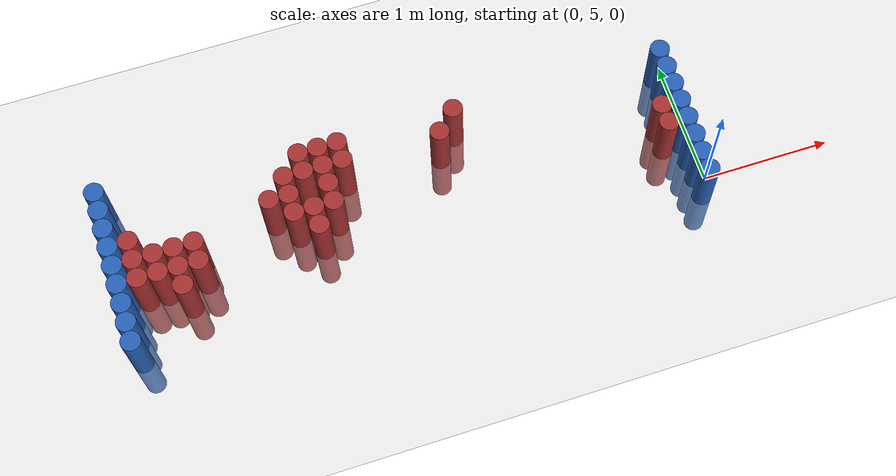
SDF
<sdf version="1.6">
 <world name="default">
  <model name="ground_plane">
   <static>1</static>
   <link name="link">
    <collision name="collision">
     <geometry><plane><normal>0 0 1</normal><size>100 100</size></plane></geometry>
     <surface><friction><ode><mu>100</mu><mu2>50</mu2></ode></friction></surface>
    </collision>
    <visual name="visual">
     <cast_shadows>0</cast_shadows>
     <geometry><plane><normal>0 0 1</normal><size>100 100</size></plane></geometry>
     <material>
      <script><uri>file://media/materials/scripts/gazebo.material</uri><name>Gazebo/Grey</name></script>
     </material>
    </visual>
   </link>
  </model>
  <model name="unit_cylinder_92">
   <static>1</static>
   <pose>-0.075000 4.875000 0.000000 0.000000 0.000000 0.000000</pose>
   <link name="link">
    <inertial>
     <mass>1</mass>
     <inertia><ixx>0.145833</ixx><ixy>0</ixy><ixz>0</ixz><iyy>0.145833</iyy><iyz>0</iyz><izz>0.125</izz></inertia>
    </inertial>
    <collision name="collision">
     <geometry><cylinder><radius>0.075000</radius><length>1</length></cylinder></geometry>
    </collision>
    <visual name="visual">
     <geometry><cylinder><radius>0.075000</radius><length>1</length></cylinder></geometry>
     <material>
      <ambient>0.152000 0.379000 0.720000 1</ambient>
      <diffuse>0.152000 0.379000 0.720000 1</diffuse>
     </material>
     <material>
      <script><name>Gazebo/Grey</name><uri>file://media/materials/scripts/gazebo.material</uri></script>
     </material>
    </visual>
   </link>
  </model>
  <model name="unit_cylinder_93">
   <static>1</static>
   <pose>-4.425000 4.875000 0.000000 0.000000 0.000000 0.000000</pose>
   <link name="link">
    <inertial>
     <mass>1</mass>
     <inertia><ixx>0.145833</ixx><ixy>0</ixy><ixz>0</ixz><iyy>0.145833</iyy><iyz>0</iyz><izz>0.125</izz></inertia>
    </inertial>
    <collision name="collision">
     <geometry><cylinder><radius>0.075000</radius><length>1</length></cylinder></geometry>
    </collision>
    <visual name="visual">
     <geometry><cylinder><radius>0.075000</radius><length>1</length></cylinder></geometry>
     <material>
      <ambient>0.152000 0.379000 0.720000 1</ambient>
      <diffuse>0.152000 0.379000 0.720000 1</diffuse>
     </material>
     <material>
      <script><name>Gazebo/Grey</name><uri>file://media/materials/scripts/gazebo.material</uri></script>
     </material>
    </visual>
   </link>
  </model>
  <model name="unit_cylinder_94">
   <static>1</static>
   <pose>-0.075000 5.025000 0.000000 0.000000 0.000000 0.000000</pose>
   <link name="link">
    <inertial>
     <mass>1</mass>
     <inertia><ixx>0.145833</ixx><ixy>0</ixy><ixz>0</ixz><iyy>0.145833</iyy><iyz>0</iyz><izz>0.125</izz></inertia>
    </inertial>
    <collision name="collision">
     <geometry><cylinder><radius>0.075000</radius><length>1</length></cylinder></geometry>
    </collision>
    <visual name="visual">
     <geometry><cylinder><radius>0.075000</radius><length>1</length></cylinder></geometry>
     <material>
      <ambient>0.152000 0.379000 0.720000 1</ambient>
      <diffuse>0.152000 0.379000 0.720000 1</diffuse>
     </material>
     <material>
      <script><name>Gazebo/Grey</name><uri>file://media/materials/scripts/gazebo.material</uri></script>
     </material>
    </visual>
   </link>
  </model>
  <model name="unit_cylinder_95">
   <static>1</static>
   <pose>-4.425000 5.025000 0.000000 0.000000 0.000000 0.000000</pose>
   <link name="link">
    <inertial>
     <mass>1</mass>
     <inertia><ixx>0.145833</ixx><ixy>0</ixy><ixz>0</ixz><iyy>0.145833</iyy><iyz>0</iyz><izz>0.125</izz></inertia>
    </inertial>
    <collision name="collision">
     <geometry><cylinder><radius>0.075000</radius><length>1</length></cylinder></geometry>
    </collision>
    <visual name="visual">
     <geometry><cylinder><radius>0.075000</radius><length>1</length></cylinder></geometry>
     <material>
      <ambient>0.152000 0.379000 0.720000 1</ambient>
      <diffuse>0.152000 0.379000 0.720000 1</diffuse>
     </material>
     <material>
      <script><name>Gazebo/Grey</name><uri>file://media/materials/scripts/gazebo.material</uri></script>
     </material>
    </visual>
   </link>
  </model>
  <model name="unit_cylinder_96">
   <static>1</static>
   <pose>-4.425000 5.175000 0.000000 0.000000 0.000000 0.000000</pose>
   <link name="link">
    <inertial>
     <mass>1</mass>
     <inertia><ixx>0.145833</ixx><ixy>0</ixy><ixz>0</ixz><iyy>0.145833</iyy><iyz>0</iyz><izz>0.125</izz></inertia>
    </inertial>
    <collision name="collision">
     <geometry><cylinder><radius>0.075000</radius><length>1</length></cylinder></geometry>
    </collision>
    <visual name="visual">
     <geometry><cylinder><radius>0.075000</radius><length>1</length></cylinder></geometry>
     <material>
      <ambient>0.152000 0.379000 0.720000 1</ambient>
      <diffuse>0.152000 0.379000 0.720000 1</diffuse>
     </material>
     <material>
      <script><name>Gazebo/Grey</name><uri>file://media/materials/scripts/gazebo.material</uri></script>
     </material>
    </visual>
   </link>
  </model>
  <model name="unit_cylinder_97">
   <static>1</static>
   <pose>-4.425000 5.325000 0.000000 0.000000 0.000000 0.000000</pose>
   <link name="link">
    <inertial>
     <mass>1</mass>
     <inertia><ixx>0.145833</ixx><ixy>0</ixy><ixz>0</ixz><iyy>0.145833</iyy><iyz>0</iyz><izz>0.125</izz></inertia>
    </inertial>
    <collision name="collision">
     <geometry><cylinder><radius>0.075000</radius><length>1</length></cylinder></geometry>
    </collision>
    <visual name="visual">
     <geometry><cylinder><radius>0.075000</radius><length>1</length></cylinder></geometry>
     <material>
      <ambient>0.152000 0.379000 0.720000 1</ambient>
      <diffuse>0.152000 0.379000 0.720000 1</diffuse>
     </material>
     <material>
      <script><name>Gazebo/Grey</name><uri>file://media/materials/scripts/gazebo.material</uri></script>
     </material>
    </visual>
   </link>
  </model>
  <model name="unit_cylinder_98">
   <static>1</static>
   <pose>-4.425000 5.475000 0.000000 0.000000 0.000000 0.000000</pose>
   <link name="link">
    <inertial>
     <mass>1</mass>
     <inertia><ixx>0.145833</ixx><ixy>0</ixy><ixz>0</ixz><iyy>0.145833</iyy><iyz>0</iyz><izz>0.125</izz></inertia>
    </inertial>
    <collision name="collision">
     <geometry><cylinder><radius>0.075000</radius><length>1</length></cylinder></geometry>
    </collision>
    <visual name="visual">
     <geometry><cylinder><radius>0.075000</radius><length>1</length></cylinder></geometry>
     <material>
      <ambient>0.152000 0.379000 0.720000 1</ambient>
      <diffuse>0.152000 0.379000 0.720000 1</diffuse>
     </material>
     <material>
      <script><name>Gazebo/Grey</name><uri>file://media/materials/scripts/gazebo.material</uri></script>
     </material>
    </visual>
   </link>
  </model>
  <model name="unit_cylinder_99">
   <static>1</static>
   <pose>-4.425000 5.625000 0.000000 0.000000 0.000000 0.000000</pose>
   <link name="link">
    <inertial>
     <mass>1</mass>
     <inertia><ixx>0.145833</ixx><ixy>0</ixy><ixz>0</ixz><iyy>0.145833</iyy><iyz>0</iyz><izz>0.125</izz></inertia>
    </inertial>
    <collision name="collision">
     <geometry><cylinder><radius>0.075000</radius><length>1</length></cylinder></geometry>
    </collision>
    <visual name="visual">
     <geometry><cylinder><radius>0.075000</radius><length>1</length></cylinder></geometry>
     <material>
      <ambient>0.152000 0.379000 0.720000 1</ambient>
      <diffuse>0.152000 0.379000 0.720000 1</diffuse>
     </material>
     <material>
      <script><name>Gazebo/Grey</name><uri>file://media/materials/scripts/gazebo.material</uri></script>
     </material>
    </visual>
   </link>
  </model>
  <model name="unit_cylinder_100">
   <static>1</static>
   <pose>-4.425000 5.775000 0.000000 0.000000 0.000000 0.000000</pose>
   <link name="link">
    <inertial>
     <mass>1</mass>
     <inertia><ixx>0.145833</ixx><ixy>0</ixy><ixz>0</ixz><iyy>0.145833</iyy><iyz>0</iyz><izz>0.125</izz></inertia>
    </inertial>
    <collision name="collision">
     <geometry><cylinder><radius>0.075000</radius><length>1</length></cylinder></geometry>
    </collision>
    <visual name="visual">
     <geometry><cylinder><radius>0.075000</radius><length>1</length></cylinder></geometry>
     <material>
      <ambient>0.152000 0.379000 0.720000 1</ambient>
      <diffuse>0.152000 0.379000 0.720000 1</diffuse>
     </material>
     <material>
      <script><name>Gazebo/Grey</name><uri>file://media/materials/scripts/gazebo.material</uri></script>
     </material>
    </visual>
   </link>
  </model>
  <model name="unit_cylinder_101">
   <static>1</static>
   <pose>-4.425000 5.925000 0.000000 0.000000 0.000000 0.000000</pose>
   <link name="link">
    <inertial>
     <mass>1</mass>
     <inertia><ixx>0.145833</ixx><ixy>0</ixy><ixz>0</ixz><iyy>0.145833</iyy><iyz>0</iyz><izz>0.125</izz></inertia>
    </inertial>
    <collision name="collision">
     <geometry><cylinder><radius>0.075000</radius><length>1</length></cylinder></geometry>
    </collision>
    <visual name="visual">
     <geometry><cylinder><radius>0.075000</radius><length>1</length></cylinder></geometry>
     <material>
      <ambient>0.152000 0.379000 0.720000 1</ambient>
      <diffuse>0.152000 0.379000 0.720000 1</diffuse>
     </material>
     <material>
      <script><name>Gazebo/Grey</name><uri>file://media/materials/scripts/gazebo.material</uri></script>
     </material>
    </visual>
   </link>
  </model>
  <model name="unit_cylinder_102">
   <static>1</static>
   <pose>-4.425000 6.075000 0.000000 0.000000 0.000000 0.000000</pose>
   <link name="link">
    <inertial>
     <mass>1</mass>
     <inertia><ixx>0.145833</ixx><ixy>0</ixy><ixz>0</ixz><iyy>0.145833</iyy><iyz>0</iyz><izz>0.125</izz></inertia>
    </inertial>
    <collision name="collision">
     <geometry><cylinder><radius>0.075000</radius><length>1</length></cylinder></geometry>
    </collision>
    <visual name="visual">
     <geometry><cylinder><radius>0.075000</radius><length>1</length></cylinder></geometry>
     <material>
      <ambient>0.152000 0.379000 0.720000 1</ambient>
      <diffuse>0.152000 0.379000 0.720000 1</diffuse>
     </material>
     <material>
      <script><name>Gazebo/Grey</name><uri>file://media/materials/scripts/gazebo.material</uri></script>
     </material>
    </visual>
   </link>
  </model>
  <model name="unit_cylinder_126">
   <static>1</static>
   <pose>-4.275000 5.325000 0.000000 0.000000 0.000000 0.000000</pose>
   <link name="link">
    <inertial>
     <mass>1</mass>
     <inertia><ixx>0.145833</ixx><ixy>0</ixy><ixz>0</ixz><iyy>0.145833</iyy><iyz>0</iyz><izz>0.125</izz></inertia>
    </inertial>
    <collision name="collision">
     <geometry><cylinder><radius>0.075000</radius><length>1</length></cylinder></geometry>
    </collision>
    <visual name="visual">
     <geometry><cylinder><radius>0.075000</radius><length>1</length></cylinder></geometry>
     <material>
      <ambient>0.648000 0.192000 0.192000 1</ambient>
      <diffuse>0.648000 0.192000 0.192000 1</diffuse>
     </material>
     <material>
      <script><name>Gazebo/Grey</name><uri>file://media/materials/scripts/gazebo.material</uri></script>
     </material>
    </visual>
   </link>
  </model>
  <model name="unit_cylinder_127">
   <static>1</static>
   <pose>-4.275000 5.475000 0.000000 0.000000 0.000000 0.000000</pose>
   <link name="link">
    <inertial>
     <mass>1</mass>
     <inertia><ixx>0.145833</ixx><ixy>0</ixy><ixz>0</ixz><iyy>0.145833</iyy><iyz>0</iyz><izz>0.125</izz></inertia>
    </inertial>
    <collision name="collision">
     <geometry><cylinder><radius>0.075000</radius><length>1</length></cylinder></geometry>
    </collision>
    <visual name="visual">
     <geometry><cylinder><radius>0.075000</radius><length>1</length></cylinder></geometry>
     <material>
      <ambient>0.648000 0.192000 0.192000 1</ambient>
      <diffuse>0.648000 0.192000 0.192000 1</diffuse>
     </material>
     <material>
      <script><name>Gazebo/Grey</name><uri>file://media/materials/scripts/gazebo.material</uri></script>
     </material>
    </visual>
   </link>
  </model>
  <model name="unit_cylinder_128">
   <static>1</static>
   <pose>-4.275000 5.625000 0.000000 0.000000 0.000000 0.000000</pose>
   <link name="link">
    <inertial>
     <mass>1</mass>
     <inertia><ixx>0.145833</ixx><ixy>0</ixy><ixz>0</ixz><iyy>0.145833</iyy><iyz>0</iyz><izz>0.125</izz></inertia>
    </inertial>
    <collision name="collision">
     <geometry><cylinder><radius>0.075000</radius><length>1</length></cylinder></geometry>
    </collision>
    <visual name="visual">
     <geometry><cylinder><radius>0.075000</radius><length>1</length></cylinder></geometry>
     <material>
      <ambient>0.648000 0.192000 0.192000 1</ambient>
      <diffuse>0.648000 0.192000 0.192000 1</diffuse>
     </material>
     <material>
      <script><name>Gazebo/Grey</name><uri>file://media/materials/scripts/gazebo.material</uri></script>
     </material>
    </visual>
   </link>
  </model>
  <model name="unit_cylinder_146">
   <static>1</static>
   <pose>-4.125000 5.325000 0.000000 0.000000 0.000000 0.000000</pose>
   <link name="link">
    <inertial>
     <mass>1</mass>
     <inertia><ixx>0.145833</ixx><ixy>0</ixy><ixz>0</ixz><iyy>0.145833</iyy><iyz>0</iyz><izz>0.125</izz></inertia>
    </inertial>
    <collision name="collision">
     <geometry><cylinder><radius>0.075000</radius><length>1</length></cylinder></geometry>
    </collision>
    <visual name="visual">
     <geometry><cylinder><radius>0.075000</radius><length>1</length></cylinder></geometry>
     <material>
      <ambient>0.648000 0.192000 0.192000 1</ambient>
      <diffuse>0.648000 0.192000 0.192000 1</diffuse>
     </material>
     <material>
      <script><name>Gazebo/Grey</name><uri>file://media/materials/scripts/gazebo.material</uri></script>
     </material>
    </visual>
   </link>
  </model>
  <model name="unit_cylinder_147">
   <static>1</static>
   <pose>-4.125000 5.475000 0.000000 0.000000 0.000000 0.000000</pose>
   <link name="link">
    <inertial>
     <mass>1</mass>
     <inertia><ixx>0.145833</ixx><ixy>0</ixy><ixz>0</ixz><iyy>0.145833</iyy><iyz>0</iyz><izz>0.125</izz></inertia>
    </inertial>
    <collision name="collision">
     <geometry><cylinder><radius>0.075000</radius><length>1</length></cylinder></geometry>
    </collision>
    <visual name="visual">
     <geometry><cylinder><radius>0.075000</radius><length>1</length></cylinder></geometry>
     <material>
      <ambient>0.648000 0.192000 0.192000 1</ambient>
      <diffuse>0.648000 0.192000 0.192000 1</diffuse>
     </material>
     <material>
      <script><name>Gazebo/Grey</name><uri>file://media/materials/scripts/gazebo.material</uri></script>
     </material>
    </visual>
   </link>
  </model>
  <model name="unit_cylinder_154">
   <static>1</static>
   <pose>-3.975000 5.175000 0.000000 0.000000 0.000000 0.000000</pose>
   <link name="link">
    <inertial>
     <mass>1</mass>
     <inertia><ixx>0.145833</ixx><ixy>0</ixy><ixz>0</ixz><iyy>0.145833</iyy><iyz>0</iyz><izz>0.125</izz></inertia>
    </inertial>
    <collision name="collision">
     <geometry><cylinder><radius>0.075000</radius><length>1</length></cylinder></geometry>
    </collision>
    <visual name="visual">
     <geometry><cylinder><radius>0.075000</radius><length>1</length></cylinder></geometry>
     <material>
      <ambient>0.648000 0.192000 0.192000 1</ambient>
      <diffuse>0.648000 0.192000 0.192000 1</diffuse>
     </material>
     <material>
      <script><name>Gazebo/Grey</name><uri>file://media/materials/scripts/gazebo.material</uri></script>
     </material>
    </visual>
   </link>
  </model>
  <model name="unit_cylinder_155">
   <static>1</static>
   <pose>-3.975000 5.325000 0.000000 0.000000 0.000000 0.000000</pose>
   <link name="link">
    <inertial>
     <mass>1</mass>
     <inertia><ixx>0.145833</ixx><ixy>0</ixy><ixz>0</ixz><iyy>0.145833</iyy><iyz>0</iyz><izz>0.125</izz></inertia>
    </inertial>
    <collision name="collision">
     <geometry><cylinder><radius>0.075000</radius><length>1</length></cylinder></geometry>
    </collision>
    <visual name="visual">
     <geometry><cylinder><radius>0.075000</radius><length>1</length></cylinder></geometry>
     <material>
      <ambient>0.648000 0.192000 0.192000 1</ambient>
      <diffuse>0.648000 0.192000 0.192000 1</diffuse>
     </material>
     <material>
      <script><name>Gazebo/Grey</name><uri>file://media/materials/scripts/gazebo.material</uri></script>
     </material>
    </visual>
   </link>
  </model>
  <model name="unit_cylinder_156">
   <static>1</static>
   <pose>-3.975000 5.475000 0.000000 0.000000 0.000000 0.000000</pose>
   <link name="link">
    <inertial>
     <mass>1</mass>
     <inertia><ixx>0.145833</ixx><ixy>0</ixy><ixz>0</ixz><iyy>0.145833</iyy><iyz>0</iyz><izz>0.125</izz></inertia>
    </inertial>
    <collision name="collision">
     <geometry><cylinder><radius>0.075000</radius><length>1</length></cylinder></geometry>
    </collision>
    <visual name="visual">
     <geometry><cylinder><radius>0.075000</radius><length>1</length></cylinder></geometry>
     <material>
      <ambient>0.648000 0.192000 0.192000 1</ambient>
      <diffuse>0.648000 0.192000 0.192000 1</diffuse>
     </material>
     <material>
      <script><name>Gazebo/Grey</name><uri>file://media/materials/scripts/gazebo.material</uri></script>
     </material>
    </visual>
   </link>
  </model>
  <model name="unit_cylinder_161">
   <static>1</static>
   <pose>-3.825000 5.325000 0.000000 0.000000 0.000000 0.000000</pose>
   <link name="link">
    <inertial>
     <mass>1</mass>
     <inertia><ixx>0.145833</ixx><ixy>0</ixy><ixz>0</ixz><iyy>0.145833</iyy><iyz>0</iyz><izz>0.125</izz></inertia>
    </inertial>
    <collision name="collision">
     <geometry><cylinder><radius>0.075000</radius><length>1</length></cylinder></geometry>
    </collision>
    <visual name="visual">
     <geometry><cylinder><radius>0.075000</radius><length>1</length></cylinder></geometry>
     <material>
      <ambient>0.648000 0.192000 0.192000 1</ambient>
      <diffuse>0.648000 0.192000 0.192000 1</diffuse>
     </material>
     <material>
      <script><name>Gazebo/Grey</name><uri>file://media/materials/scripts/gazebo.material</uri></script>
     </material>
    </visual>
   </link>
  </model>
  <model name="unit_cylinder_162">
   <static>1</static>
   <pose>-3.825000 5.475000 0.000000 0.000000 0.000000 0.000000</pose>
   <link name="link">
    <inertial>
     <mass>1</mass>
     <inertia><ixx>0.145833</ixx><ixy>0</ixy><ixz>0</ixz><iyy>0.145833</iyy><iyz>0</iyz><izz>0.125</izz></inertia>
    </inertial>
    <collision name="collision">
     <geometry><cylinder><radius>0.075000</radius><length>1</length></cylinder></geometry>
    </collision>
    <visual name="visual">
     <geometry><cylinder><radius>0.075000</radius><length>1</length></cylinder></geometry>
     <material>
      <ambient>0.648000 0.192000 0.192000 1</ambient>
      <diffuse>0.648000 0.192000 0.192000 1</diffuse>
     </material>
     <material>
      <script><name>Gazebo/Grey</name><uri>file://media/materials/scripts/gazebo.material</uri></script>
     </material>
    </visual>
   </link>
  </model>
  <model name="unit_cylinder_174">
   <static>1</static>
   <pose>-3.225000 5.625000 0.000000 0.000000 0.000000 0.000000</pose>
   <link name="link">
    <inertial>
     <mass>1</mass>
     <inertia><ixx>0.145833</ixx><ixy>0</ixy><ixz>0</ixz><iyy>0.145833</iyy><iyz>0</iyz><izz>0.125</izz></inertia>
    </inertial>
    <collision name="collision">
     <geometry><cylinder><radius>0.075000</radius><length>1</length></cylinder></geometry>
    </collision>
    <visual name="visual">
     <geometry><cylinder><radius>0.075000</radius><length>1</length></cylinder></geometry>
     <material>
      <ambient>0.648000 0.192000 0.192000 1</ambient>
      <diffuse>0.648000 0.192000 0.192000 1</diffuse>
     </material>
     <material>
      <script><name>Gazebo/Grey</name><uri>file://media/materials/scripts/gazebo.material</uri></script>
     </material>
    </visual>
   </link>
  </model>
  <model name="unit_cylinder_182">
   <static>1</static>
   <pose>-3.075000 5.475000 0.000000 0.000000 0.000000 0.000000</pose>
   <link name="link">
    <inertial>
     <mass>1</mass>
     <inertia><ixx>0.145833</ixx><ixy>0</ixy><ixz>0</ixz><iyy>0.145833</iyy><iyz>0</iyz><izz>0.125</izz></inertia>
    </inertial>
    <collision name="collision">
     <geometry><cylinder><radius>0.075000</radius><length>1</length></cylinder></geometry>
    </collision>
    <visual name="visual">
     <geometry><cylinder><radius>0.075000</radius><length>1</length></cylinder></geometry>
     <material>
      <ambient>0.648000 0.192000 0.192000 1</ambient>
      <diffuse>0.648000 0.192000 0.192000 1</diffuse>
     </material>
     <material>
      <script><name>Gazebo/Grey</name><uri>file://media/materials/scripts/gazebo.material</uri></script>
     </material>
    </visual>
   </link>
  </model>
  <model name="unit_cylinder_183">
   <static>1</static>
   <pose>-3.075000 5.625000 0.000000 0.000000 0.000000 0.000000</pose>
   <link name="link">
    <inertial>
     <mass>1</mass>
     <inertia><ixx>0.145833</ixx><ixy>0</ixy><ixz>0</ixz><iyy>0.145833</iyy><iyz>0</iyz><izz>0.125</izz></inertia>
    </inertial>
    <collision name="collision">
     <geometry><cylinder><radius>0.075000</radius><length>1</length></cylinder></geometry>
    </collision>
    <visual name="visual">
     <geometry><cylinder><radius>0.075000</radius><length>1</length></cylinder></geometry>
     <material>
      <ambient>0.648000 0.192000 0.192000 1</ambient>
      <diffuse>0.648000 0.192000 0.192000 1</diffuse>
     </material>
     <material>
      <script><name>Gazebo/Grey</name><uri>file://media/materials/scripts/gazebo.material</uri></script>
     </material>
    </visual>
   </link>
  </model>
  <model name="unit_cylinder_184">
   <static>1</static>
   <pose>-3.075000 5.775000 0.000000 0.000000 0.000000 0.000000</pose>
   <link name="link">
    <inertial>
     <mass>1</mass>
     <inertia><ixx>0.145833</ixx><ixy>0</ixy><ixz>0</ixz><iyy>0.145833</iyy><iyz>0</iyz><izz>0.125</izz></inertia>
    </inertial>
    <collision name="collision">
     <geometry><cylinder><radius>0.075000</radius><length>1</length></cylinder></geometry>
    </collision>
    <visual name="visual">
     <geometry><cylinder><radius>0.075000</radius><length>1</length></cylinder></geometry>
     <material>
      <ambient>0.648000 0.192000 0.192000 1</ambient>
      <diffuse>0.648000 0.192000 0.192000 1</diffuse>
     </material>
     <material>
      <script><name>Gazebo/Grey</name><uri>file://media/materials/scripts/gazebo.material</uri></script>
     </material>
    </visual>
   </link>
  </model>
  <model name="unit_cylinder_191">
   <static>1</static>
   <pose>-2.925000 5.325000 0.000000 0.000000 0.000000 0.000000</pose>
   <link name="link">
    <inertial>
     <mass>1</mass>
     <inertia><ixx>0.145833</ixx><ixy>0</ixy><ixz>0</ixz><iyy>0.145833</iyy><iyz>0</iyz><izz>0.125</izz></inertia>
    </inertial>
    <collision name="collision">
     <geometry><cylinder><radius>0.075000</radius><length>1</length></cylinder></geometry>
    </collision>
    <visual name="visual">
     <geometry><cylinder><radius>0.075000</radius><length>1</length></cylinder></geometry>
     <material>
      <ambient>0.648000 0.192000 0.192000 1</ambient>
      <diffuse>0.648000 0.192000 0.192000 1</diffuse>
     </material>
     <material>
      <script><name>Gazebo/Grey</name><uri>file://media/materials/scripts/gazebo.material</uri></script>
     </material>
    </visual>
   </link>
  </model>
  <model name="unit_cylinder_192">
   <static>1</static>
   <pose>-2.925000 5.475000 0.000000 0.000000 0.000000 0.000000</pose>
   <link name="link">
    <inertial>
     <mass>1</mass>
     <inertia><ixx>0.145833</ixx><ixy>0</ixy><ixz>0</ixz><iyy>0.145833</iyy><iyz>0</iyz><izz>0.125</izz></inertia>
    </inertial>
    <collision name="collision">
     <geometry><cylinder><radius>0.075000</radius><length>1</length></cylinder></geometry>
    </collision>
    <visual name="visual">
     <geometry><cylinder><radius>0.075000</radius><length>1</length></cylinder></geometry>
     <material>
      <ambient>0.648000 0.192000 0.192000 1</ambient>
      <diffuse>0.648000 0.192000 0.192000 1</diffuse>
     </material>
     <material>
      <script><name>Gazebo/Grey</name><uri>file://media/materials/scripts/gazebo.material</uri></script>
     </material>
    </visual>
   </link>
  </model>
  <model name="unit_cylinder_193">
   <static>1</static>
   <pose>-2.925000 5.775000 0.000000 0.000000 0.000000 0.000000</pose>
   <link name="link">
    <inertial>
     <mass>1</mass>
     <inertia><ixx>0.145833</ixx><ixy>0</ixy><ixz>0</ixz><iyy>0.145833</iyy><iyz>0</iyz><izz>0.125</izz></inertia>
    </inertial>
    <collision name="collision">
     <geometry><cylinder><radius>0.075000</radius><length>1</length></cylinder></geometry>
    </collision>
    <visual name="visual">
     <geometry><cylinder><radius>0.075000</radius><length>1</length></cylinder></geometry>
     <material>
      <ambient>0.648000 0.192000 0.192000 1</ambient>
      <diffuse>0.648000 0.192000 0.192000 1</diffuse>
     </material>
     <material>
      <script><name>Gazebo/Grey</name><uri>file://media/materials/scripts/gazebo.material</uri></script>
     </material>
    </visual>
   </link>
  </model>
  <model name="unit_cylinder_194">
   <static>1</static>
   <pose>-2.925000 5.925000 0.000000 0.000000 0.000000 0.000000</pose>
   <link name="link">
    <inertial>
     <mass>1</mass>
     <inertia><ixx>0.145833</ixx><ixy>0</ixy><ixz>0</ixz><iyy>0.145833</iyy><iyz>0</iyz><izz>0.125</izz></inertia>
    </inertial>
    <collision name="collision">
     <geometry><cylinder><radius>0.075000</radius><length>1</length></cylinder></geometry>
    </collision>
    <visual name="visual">
     <geometry><cylinder><radius>0.075000</radius><length>1</length></cylinder></geometry>
     <material>
      <ambient>0.648000 0.192000 0.192000 1</ambient>
      <diffuse>0.648000 0.192000 0.192000 1</diffuse>
     </material>
     <material>
      <script><name>Gazebo/Grey</name><uri>file://media/materials/scripts/gazebo.material</uri></script>
     </material>
    </visual>
   </link>
  </model>
  <model name="unit_cylinder_197">
   <static>1</static>
   <pose>-2.775000 5.475000 0.000000 0.000000 0.000000 0.000000</pose>
   <link name="link">
    <inertial>
     <mass>1</mass>
     <inertia><ixx>0.145833</ixx><ixy>0</ixy><ixz>0</ixz><iyy>0.145833</iyy><iyz>0</iyz><izz>0.125</izz></inertia>
    </inertial>
    <collision name="collision">
     <geometry><cylinder><radius>0.075000</radius><length>1</length></cylinder></geometry>
    </collision>
    <visual name="visual">
     <geometry><cylinder><radius>0.075000</radius><length>1</length></cylinder></geometry>
     <material>
      <ambient>0.648000 0.192000 0.192000 1</ambient>
      <diffuse>0.648000 0.192000 0.192000 1</diffuse>
     </material>
     <material>
      <script><name>Gazebo/Grey</name><uri>file://media/materials/scripts/gazebo.material</uri></script>
     </material>
    </visual>
   </link>
  </model>
  <model name="unit_cylinder_198">
   <static>1</static>
   <pose>-2.775000 5.625000 0.000000 0.000000 0.000000 0.000000</pose>
   <link name="link">
    <inertial>
     <mass>1</mass>
     <inertia><ixx>0.145833</ixx><ixy>0</ixy><ixz>0</ixz><iyy>0.145833</iyy><iyz>0</iyz><izz>0.125</izz></inertia>
    </inertial>
    <collision name="collision">
     <geometry><cylinder><radius>0.075000</radius><length>1</length></cylinder></geometry>
    </collision>
    <visual name="visual">
     <geometry><cylinder><radius>0.075000</radius><length>1</length></cylinder></geometry>
     <material>
      <ambient>0.648000 0.192000 0.192000 1</ambient>
      <diffuse>0.648000 0.192000 0.192000 1</diffuse>
     </material>
     <material>
      <script><name>Gazebo/Grey</name><uri>file://media/materials/scripts/gazebo.material</uri></script>
     </material>
    </visual>
   </link>
  </model>
  <model name="unit_cylinder_199">
   <static>1</static>
   <pose>-2.775000 5.775000 0.000000 0.000000 0.000000 0.000000</pose>
   <link name="link">
    <inertial>
     <mass>1</mass>
     <inertia><ixx>0.145833</ixx><ixy>0</ixy><ixz>0</ixz><iyy>0.145833</iyy><iyz>0</iyz><izz>0.125</izz></inertia>
    </inertial>
    <collision name="collision">
     <geometry><cylinder><radius>0.075000</radius><length>1</length></cylinder></geometry>
    </collision>
    <visual name="visual">
     <geometry><cylinder><radius>0.075000</radius><length>1</length></cylinder></geometry>
     <material>
      <ambient>0.648000 0.192000 0.192000 1</ambient>
      <diffuse>0.648000 0.192000 0.192000 1</diffuse>
     </material>
     <material>
      <script><name>Gazebo/Grey</name><uri>file://media/materials/scripts/gazebo.material</uri></script>
     </material>
    </visual>
   </link>
  </model>
  <model name="unit_cylinder_200">
   <static>1</static>
   <pose>-2.775000 5.925000 0.000000 0.000000 0.000000 0.000000</pose>
   <link name="link">
    <inertial>
     <mass>1</mass>
     <inertia><ixx>0.145833</ixx><ixy>0</ixy><ixz>0</ixz><iyy>0.145833</iyy><iyz>0</iyz><izz>0.125</izz></inertia>
    </inertial>
    <collision name="collision">
     <geometry><cylinder><radius>0.075000</radius><length>1</length></cylinder></geometry>
    </collision>
    <visual name="visual">
     <geometry><cylinder><radius>0.075000</radius><length>1</length></cylinder></geometry>
     <material>
      <ambient>0.648000 0.192000 0.192000 1</ambient>
      <diffuse>0.648000 0.192000 0.192000 1</diffuse>
     </material>
     <material>
      <script><name>Gazebo/Grey</name><uri>file://media/materials/scripts/gazebo.material</uri></script>
     </material>
    </visual>
   </link>
  </model>
  <model name="unit_cylinder_204">
   <static>1</static>
   <pose>-2.625000 5.775000 0.000000 0.000000 0.000000 0.000000</pose>
   <link name="link">
    <inertial>
     <mass>1</mass>
     <inertia><ixx>0.145833</ixx><ixy>0</ixy><ixz>0</ixz><iyy>0.145833</iyy><iyz>0</iyz><izz>0.125</izz></inertia>
    </inertial>
    <collision name="collision">
     <geometry><cylinder><radius>0.075000</radius><length>1</length></cylinder></geometry>
    </collision>
    <visual name="visual">
     <geometry><cylinder><radius>0.075000</radius><length>1</length></cylinder></geometry>
     <material>
      <ambient>0.648000 0.192000 0.192000 1</ambient>
      <diffuse>0.648000 0.192000 0.192000 1</diffuse>
     </material>
     <material>
      <script><name>Gazebo/Grey</name><uri>file://media/materials/scripts/gazebo.material</uri></script>
     </material>
    </visual>
   </link>
  </model>
  <model name="unit_cylinder_205">
   <static>1</static>
   <pose>-2.625000 5.925000 0.000000 0.000000 0.000000 0.000000</pose>
   <link name="link">
    <inertial>
     <mass>1</mass>
     <inertia><ixx>0.145833</ixx><ixy>0</ixy><ixz>0</ixz><iyy>0.145833</iyy><iyz>0</iyz><izz>0.125</izz></inertia>
    </inertial>
    <collision name="collision">
     <geometry><cylinder><radius>0.075000</radius><length>1</length></cylinder></geometry>
    </collision>
    <visual name="visual">
     <geometry><cylinder><radius>0.075000</radius><length>1</length></cylinder></geometry>
     <material>
      <ambient>0.648000 0.192000 0.192000 1</ambient>
      <diffuse>0.648000 0.192000 0.192000 1</diffuse>
     </material>
     <material>
      <script><name>Gazebo/Grey</name><uri>file://media/materials/scripts/gazebo.material</uri></script>
     </material>
    </visual>
   </link>
  </model>
  <model name="unit_cylinder_216">
   <static>1</static>
   <pose>-1.875000 5.775000 0.000000 0.000000 0.000000 0.000000</pose>
   <link name="link">
    <inertial>
     <mass>1</mass>
     <inertia><ixx>0.145833</ixx><ixy>0</ixy><ixz>0</ixz><iyy>0.145833</iyy><iyz>0</iyz><izz>0.125</izz></inertia>
    </inertial>
    <collision name="collision">
     <geometry><cylinder><radius>0.075000</radius><length>1</length></cylinder></geometry>
    </collision>
    <visual name="visual">
     <geometry><cylinder><radius>0.075000</radius><length>1</length></cylinder></geometry>
     <material>
      <ambient>0.648000 0.192000 0.192000 1</ambient>
      <diffuse>0.648000 0.192000 0.192000 1</diffuse>
     </material>
     <material>
      <script><name>Gazebo/Grey</name><uri>file://media/materials/scripts/gazebo.material</uri></script>
     </material>
    </visual>
   </link>
  </model>
  <model name="unit_cylinder_222">
   <static>1</static>
   <pose>-1.725000 5.925000 0.000000 0.000000 0.000000 0.000000</pose>
   <link name="link">
    <inertial>
     <mass>1</mass>
     <inertia><ixx>0.145833</ixx><ixy>0</ixy><ixz>0</ixz><iyy>0.145833</iyy><iyz>0</iyz><izz>0.125</izz></inertia>
    </inertial>
    <collision name="collision">
     <geometry><cylinder><radius>0.075000</radius><length>1</length></cylinder></geometry>
    </collision>
    <visual name="visual">
     <geometry><cylinder><radius>0.075000</radius><length>1</length></cylinder></geometry>
     <material>
      <ambient>0.648000 0.192000 0.192000 1</ambient>
      <diffuse>0.648000 0.192000 0.192000 1</diffuse>
     </material>
     <material>
      <script><name>Gazebo/Grey</name><uri>file://media/materials/scripts/gazebo.material</uri></script>
     </material>
    </visual>
   </link>
  </model>
  <model name="unit_cylinder_234">
   <static>1</static>
   <pose>-0.225000 5.325000 0.000000 0.000000 0.000000 0.000000</pose>
   <link name="link">
    <inertial>
     <mass>1</mass>
     <inertia><ixx>0.145833</ixx><ixy>0</ixy><ixz>0</ixz><iyy>0.145833</iyy><iyz>0</iyz><izz>0.125</izz></inertia>
    </inertial>
    <collision name="collision">
     <geometry><cylinder><radius>0.075000</radius><length>1</length></cylinder></geometry>
    </collision>
    <visual name="visual">
     <geometry><cylinder><radius>0.075000</radius><length>1</length></cylinder></geometry>
     <material>
      <ambient>0.648000 0.192000 0.192000 1</ambient>
      <diffuse>0.648000 0.192000 0.192000 1</diffuse>
     </material>
     <material>
      <script><name>Gazebo/Grey</name><uri>file://media/materials/scripts/gazebo.material</uri></script>
     </material>
    </visual>
   </link>
  </model>
  <model name="unit_cylinder_235">
   <static>1</static>
   <pose>-0.225000 5.475000 0.000000 0.000000 0.000000 0.000000</pose>
   <link name="link">
    <inertial>
     <mass>1</mass>
     <inertia><ixx>0.145833</ixx><ixy>0</ixy><ixz>0</ixz><iyy>0.145833</iyy><iyz>0</iyz><izz>0.125</izz></inertia>
    </inertial>
    <collision name="collision">
     <geometry><cylinder><radius>0.075000</radius><length>1</length></cylinder></geometry>
    </collision>
    <visual name="visual">
     <geometry><cylinder><radius>0.075000</radius><length>1</length></cylinder></geometry>
     <material>
      <ambient>0.648000 0.192000 0.192000 1</ambient>
      <diffuse>0.648000 0.192000 0.192000 1</diffuse>
     </material>
     <material>
      <script><name>Gazebo/Grey</name><uri>file://media/materials/scripts/gazebo.material</uri></script>
     </material>
    </visual>
   </link>
  </model>
  <model name="unit_cylinder_244">
   <static>1</static>
   <pose>-0.075000 5.175000 0.000000 0.000000 0.000000 0.000000</pose>
   <link name="link">
    <inertial>
     <mass>1</mass>
     <inertia><ixx>0.145833</ixx><ixy>0</ixy><ixz>0</ixz><iyy>0.145833</iyy><iyz>0</iyz><izz>0.125</izz></inertia>
    </inertial>
    <collision name="collision">
     <geometry><cylinder><radius>0.075000</radius><length>1</length></cylinder></geometry>
    </collision>
    <visual name="visual">
     <geometry><cylinder><radius>0.075000</radius><length>1</length></cylinder></geometry>
     <material>
      <ambient>0.152000 0.379000 0.720000 1</ambient>
      <diffuse>0.152000 0.379000 0.720000 1</diffuse>
     </material>
     <material>
      <script><name>Gazebo/Grey</name><uri>file://media/materials/scripts/gazebo.material</uri></script>
     </material>
    </visual>
   </link>
  </model>
  <model name="unit_cylinder_245">
   <static>1</static>
   <pose>-0.075000 5.325000 0.000000 0.000000 0.000000 0.000000</pose>
   <link name="link">
    <inertial>
     <mass>1</mass>
     <inertia><ixx>0.145833</ixx><ixy>0</ixy><ixz>0</ixz><iyy>0.145833</iyy><iyz>0</iyz><izz>0.125</izz></inertia>
    </inertial>
    <collision name="collision">
     <geometry><cylinder><radius>0.075000</radius><length>1</length></cylinder></geometry>
    </collision>
    <visual name="visual">
     <geometry><cylinder><radius>0.075000</radius><length>1</length></cylinder></geometry>
     <material>
      <ambient>0.152000 0.379000 0.720000 1</ambient>
      <diffuse>0.152000 0.379000 0.720000 1</diffuse>
     </material>
     <material>
      <script><name>Gazebo/Grey</name><uri>file://media/materials/scripts/gazebo.material</uri></script>
     </material>
    </visual>
   </link>
  </model>
  <model name="unit_cylinder_246">
   <static>1</static>
   <pose>-0.075000 5.475000 0.000000 0.000000 0.000000 0.000000</pose>
   <link name="link">
    <inertial>
     <mass>1</mass>
     <inertia><ixx>0.145833</ixx><ixy>0</ixy><ixz>0</ixz><iyy>0.145833</iyy><iyz>0</iyz><izz>0.125</izz></inertia>
    </inertial>
    <collision name="collision">
     <geometry><cylinder><radius>0.075000</radius><length>1</length></cylinder></geometry>
    </collision>
    <visual name="visual">
     <geometry><cylinder><radius>0.075000</radius><length>1</length></cylinder></geometry>
     <material>
      <ambient>0.152000 0.379000 0.720000 1</ambient>
      <diffuse>0.152000 0.379000 0.720000 1</diffuse>
     </material>
     <material>
      <script><name>Gazebo/Grey</name><uri>file://media/materials/scripts/gazebo.material</uri></script>
     </material>
    </visual>
   </link>
  </model>
  <model name="unit_cylinder_247">
   <static>1</static>
   <pose>-0.075000 5.625000 0.000000 0.000000 0.000000 0.000000</pose>
   <link name="link">
    <inertial>
     <mass>1</mass>
     <inertia><ixx>0.145833</ixx><ixy>0</ixy><ixz>0</ixz><iyy>0.145833</iyy><iyz>0</iyz><izz>0.125</izz></inertia>
    </inertial>
    <collision name="collision">
     <geometry><cylinder><radius>0.075000</radius><length>1</length></cylinder></geometry>
    </collision>
    <visual name="visual">
     <geometry><cylinder><radius>0.075000</radius><length>1</length></cylinder></geometry>
     <material>
      <ambient>0.152000 0.379000 0.720000 1</ambient>
      <diffuse>0.152000 0.379000 0.720000 1</diffuse>
     </material>
     <material>
      <script><name>Gazebo/Grey</name><uri>file://media/materials/scripts/gazebo.material</uri></script>
     </material>
    </visual>
   </link>
  </model>
  <model name="unit_cylinder_248">
   <static>1</static>
   <pose>-0.075000 5.775000 0.000000 0.000000 0.000000 0.000000</pose>
   <link name="link">
    <inertial>
     <mass>1</mass>
     <inertia><ixx>0.145833</ixx><ixy>0</ixy><ixz>0</ixz><iyy>0.145833</iyy><iyz>0</iyz><izz>0.125</izz></inertia>
    </inertial>
    <collision name="collision">
     <geometry><cylinder><radius>0.075000</radius><length>1</length></cylinder></geometry>
    </collision>
    <visual name="visual">
     <geometry><cylinder><radius>0.075000</radius><length>1</length></cylinder></geometry>
     <material>
      <ambient>0.152000 0.379000 0.720000 1</ambient>
      <diffuse>0.152000 0.379000 0.720000 1</diffuse>
     </material>
     <material>
      <script><name>Gazebo/Grey</name><uri>file://media/materials/scripts/gazebo.material</uri></script>
     </material>
    </visual>
   </link>
  </model>
  <model name="unit_cylinder_249">
   <static>1</static>
   <pose>-0.075000 5.925000 0.000000 0.000000 0.000000 0.000000</pose>
   <link name="link">
    <inertial>
     <mass>1</mass>
     <inertia><ixx>0.145833</ixx><ixy>0</ixy><ixz>0</ixz><iyy>0.145833</iyy><iyz>0</iyz><izz>0.125</izz></inertia>
    </inertial>
    <collision name="collision">
     <geometry><cylinder><radius>0.075000</radius><length>1</length></cylinder></geometry>
    </collision>
    <visual name="visual">
     <geometry><cylinder><radius>0.075000</radius><length>1</length></cylinder></geometry>
     <material>
      <ambient>0.152000 0.379000 0.720000 1</ambient>
      <diffuse>0.152000 0.379000 0.720000 1</diffuse>
     </material>
     <material>
      <script><name>Gazebo/Grey</name><uri>file://media/materials/scripts/gazebo.material</uri></script>
     </material>
    </visual>
   </link>
  </model>
 </world>
</sdf>
